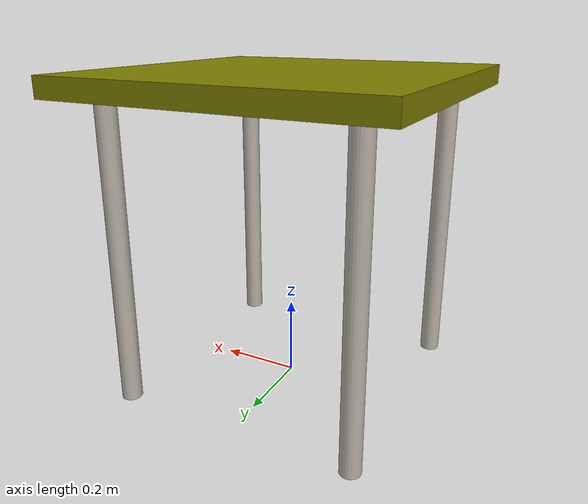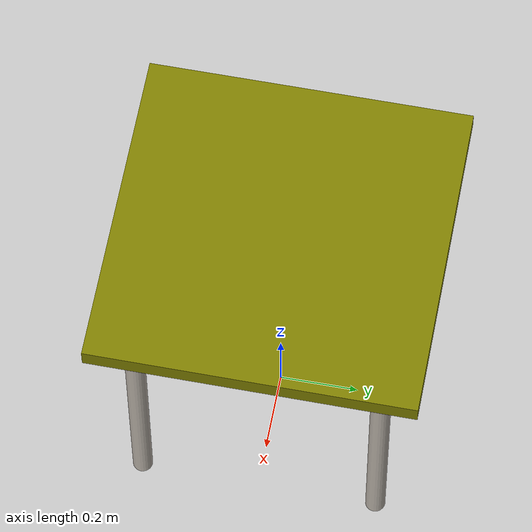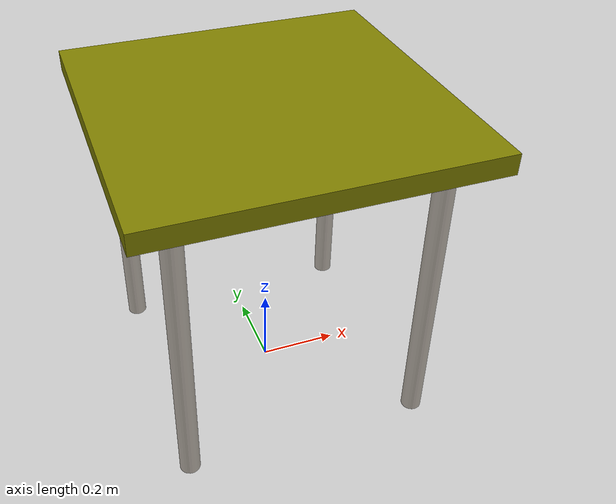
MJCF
<?xml version='1.0' encoding='utf-8'?>
<mujoco model="base">
	<compiler angle="radian" inertiagrouprange="0 0" autolimits="true" />
	<option impratio="20" cone="elliptic" density="1.2" viscosity="0.00002" timestep="0.002" />
	<size nconmax="5000" njmax="5000" />
	<asset>
		<texture builtin="gradient" height="256" rgb1=".9 .9 1." rgb2=".2 .3 .4" type="skybox" width="256" />
		<texture file="textures/light-gray-floor-tile.png" type="2d" name="texplane" />
		<material name="floorplane" reflectance="0.01" shininess="0.0" specular="0.0" texrepeat="2 2" texture="texplane" texuniform="true" />
		<texture file="textures/ceramic.png" type="cube" name="tex-ceramic" />
		<material name="table_ceramic" reflectance="0.0" shininess="0.0" specular="0.2" texrepeat="1 1" texture="tex-ceramic" />
		<texture file="textures/steel-brushed.png" type="cube" name="tex-steel-brushed" />
		<material name="table_legs_metal" reflectance="0.8" shininess="0.8" texrepeat="1 1" texture="tex-steel-brushed" />
		<texture file="textures/light-gray-plaster.png" type="2d" name="tex-light-gray-plaster" />
		<material name="walls_mat" reflectance="0.0" shininess="0.1" specular="0.1" texrepeat="3 3" texture="tex-light-gray-plaster" texuniform="true" />
		<texture name="textable" builtin="flat" height="512" width="512" rgb1="0.5 0.5 0.5" rgb2="0.5 0.5 0.5" />
		<material name="table_mat" texture="textable" />
	</asset>
	<visual>
		<map znear="0.001" />
	</visual>
	<actuator>
  </actuator>
	<worldbody>
		<body name="table" pos="0.0 0.0 0.775">
			<geom pos="0 0 0" size="0.4 0.4 0.025" type="box" group="0" name="table_collision" friction="1 0.005 0.0001" rgba="0.5 0.5 0 1" />
			<geom pos="0 0 0" size="0.4 0.4 0.025" type="box" conaffinity="0" contype="0" group="1" name="table_visual" material="table_ceramic" />
			<site pos="0.0 0.0 0.025" name="table_top" size="0.001 0.001 0.001" rgba="0 0 0 0" />
			<geom pos="0.30000000000000004 0.30000000000000004 -0.3875" size="0.025 0.3875" type="cylinder" conaffinity="0" contype="0" group="1" name="table_leg1_visual" material="table_legs_metal" />
			<geom pos="-0.30000000000000004 0.30000000000000004 -0.3875" size="0.025 0.3875" type="cylinder" conaffinity="0" contype="0" group="1" name="table_leg2_visual" material="table_legs_metal" />
			<geom pos="-0.30000000000000004 -0.30000000000000004 -0.3875" size="0.025 0.3875" type="cylinder" conaffinity="0" contype="0" group="1" name="table_leg3_visual" material="table_legs_metal" />
			<geom pos="0.30000000000000004 -0.30000000000000004 -0.3875" size="0.025 0.3875" type="cylinder" conaffinity="0" contype="0" group="1" name="table_leg4_visual" material="table_legs_metal" />
		</body>
	</worldbody>
	<equality>
  </equality>
	<sensor />
	<tendon />
	<contact />
</mujoco>
